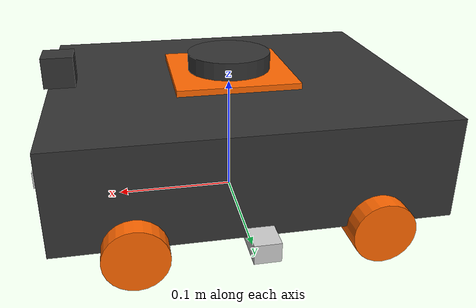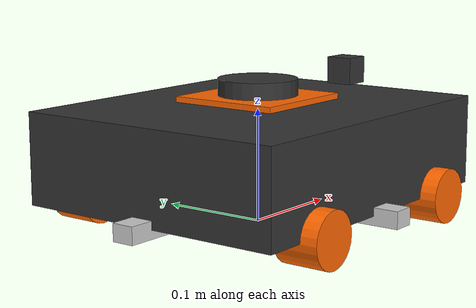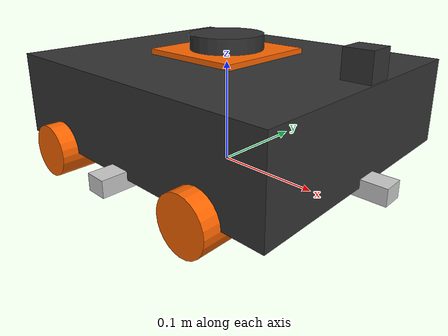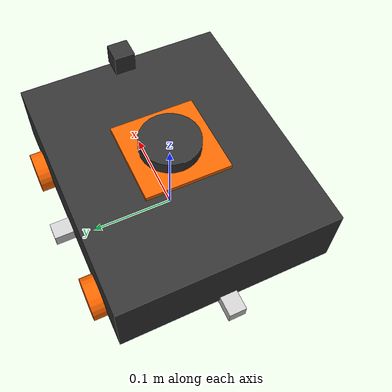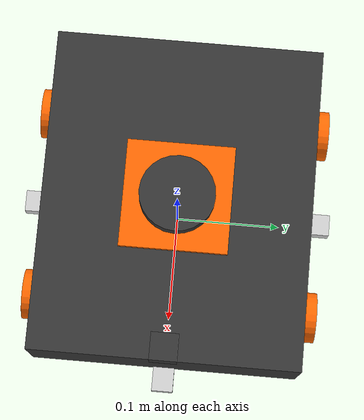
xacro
<?xml version="1.0"?>
<!-- SPDX-License-Identifier: Apache-2.0 -->
<robot xmlns:xacro="http://www.ros.org/wiki/xacro" name="robot_platform">

  <!-- SKU-configurable parameters (defaults = Basic/Standard/Pro) -->
  <xacro:arg name="chassis_length" default="0.300"/>
  <xacro:arg name="chassis_width" default="0.250"/>
  <xacro:arg name="chassis_height" default="0.080"/>
  <xacro:arg name="chassis_mass" default="2.5"/>
  <xacro:arg name="wheel_radius" default="0.024"/>
  <xacro:arg name="wheel_width" default="0.040"/>
  <xacro:arg name="wheel_mass" default="0.15"/>
  <xacro:arg name="wheelbase" default="0.180"/>
  <xacro:arg name="track_width" default="0.200"/>

  <xacro:property name="chassis_length" value="$(arg chassis_length)"/>
  <xacro:property name="chassis_width" value="$(arg chassis_width)"/>
  <xacro:property name="chassis_height" value="$(arg chassis_height)"/>
  <xacro:property name="chassis_mass" value="$(arg chassis_mass)"/>
  <xacro:property name="wheel_radius" value="$(arg wheel_radius)"/>
  <xacro:property name="wheel_width" value="$(arg wheel_width)"/>
  <xacro:property name="wheel_mass" value="$(arg wheel_mass)"/>
  <xacro:property name="wheelbase" value="$(arg wheelbase)"/>
  <xacro:property name="track_width" value="$(arg track_width)"/>
  <xacro:property name="ground_clearance" value="${wheel_radius + 0.001}"/>

  <!-- Materials -->
  <material name="dark_grey">
    <color rgba="0.2 0.2 0.2 1.0"/>
  </material>
  <material name="orange">
    <color rgba="1.0 0.4 0.0 1.0"/>
  </material>
  <material name="light_grey">
    <color rgba="0.8 0.8 0.8 1.0"/>
  </material>

  <!-- Inertia macros -->
  <xacro:macro name="box_inertia" params="m x y z">
    <inertial>
      <mass value="${m}"/>
      <inertia ixx="${m*(y*y+z*z)/12}" ixy="0" ixz="0"
               iyy="${m*(x*x+z*z)/12}" iyz="0"
               izz="${m*(x*x+y*y)/12}"/>
    </inertial>
  </xacro:macro>

  <xacro:macro name="cylinder_inertia" params="m r h">
    <inertial>
      <mass value="${m}"/>
      <inertia ixx="${m*(3*r*r+h*h)/12}" ixy="0" ixz="0"
               iyy="${m*(3*r*r+h*h)/12}" iyz="0"
               izz="${m*r*r/2}"/>
    </inertial>
  </xacro:macro>

  <!-- Wheel macro -->
  <xacro:macro name="mecanum_wheel" params="name x_offset y_offset">
    <link name="${name}_wheel_link">
      <visual>
        <geometry>
          <cylinder radius="${wheel_radius}" length="${wheel_width}"/>
        </geometry>
        <origin xyz="0 0 0" rpy="${pi/2} 0 0"/>
        <material name="orange"/>
      </visual>
      <collision>
        <geometry>
          <cylinder radius="${wheel_radius}" length="${wheel_width}"/>
        </geometry>
        <origin xyz="0 0 0" rpy="${pi/2} 0 0"/>
      </collision>
      <xacro:cylinder_inertia m="${wheel_mass}" r="${wheel_radius}" h="${wheel_width}"/>
    </link>

    <joint name="${name}_wheel_joint" type="continuous">
      <parent link="base_link"/>
      <child link="${name}_wheel_link"/>
      <origin xyz="${x_offset} ${y_offset} 0" rpy="0 0 0"/>
      <axis xyz="0 1 0"/>
    </joint>
  </xacro:macro>

  <!-- Ultrasonic sensor macro -->
  <xacro:macro name="ultrasonic_sensor" params="name x y yaw">
    <link name="${name}_link">
      <visual>
        <geometry>
          <box size="0.045 0.020 0.015"/>
        </geometry>
        <material name="light_grey"/>
      </visual>
      <collision>
        <geometry>
          <box size="0.045 0.020 0.015"/>
        </geometry>
      </collision>
      <inertial>
        <mass value="0.01"/>
        <inertia ixx="0.000001" ixy="0" ixz="0" iyy="0.000001" iyz="0" izz="0.000001"/>
      </inertial>
    </link>

    <joint name="${name}_joint" type="fixed">
      <parent link="base_link"/>
      <child link="${name}_link"/>
      <origin xyz="${x} ${y} 0.0" rpy="0 0 ${yaw}"/>
    </joint>
  </xacro:macro>

  <!-- Base footprint (ground plane reference) -->
  <link name="base_footprint"/>

  <!-- Base link (chassis) -->
  <link name="base_link">
    <visual>
      <geometry>
        <box size="${chassis_length} ${chassis_width} ${chassis_height}"/>
      </geometry>
      <origin xyz="0 0 ${chassis_height/2}" rpy="0 0 0"/>
      <material name="dark_grey"/>
    </visual>
    <collision>
      <geometry>
        <box size="${chassis_length} ${chassis_width} ${chassis_height}"/>
      </geometry>
      <origin xyz="0 0 ${chassis_height/2}" rpy="0 0 0"/>
    </collision>
    <xacro:box_inertia m="${chassis_mass}" x="${chassis_length}" y="${chassis_width}" z="${chassis_height}"/>
  </link>

  <joint name="base_footprint_joint" type="fixed">
    <parent link="base_footprint"/>
    <child link="base_link"/>
    <origin xyz="0 0 ${ground_clearance}" rpy="0 0 0"/>
  </joint>

  <!-- Wheels -->
  <xacro:mecanum_wheel name="front_left"  x_offset="${wheelbase/2}"  y_offset="${track_width/2 + wheel_width/2}"/>
  <xacro:mecanum_wheel name="front_right" x_offset="${wheelbase/2}"  y_offset="${-(track_width/2 + wheel_width/2)}"/>
  <xacro:mecanum_wheel name="rear_left"   x_offset="${-wheelbase/2}" y_offset="${track_width/2 + wheel_width/2}"/>
  <xacro:mecanum_wheel name="rear_right"  x_offset="${-wheelbase/2}" y_offset="${-(track_width/2 + wheel_width/2)}"/>

  <!-- IMU -->
  <link name="imu_link">
    <visual>
      <geometry>
        <box size="0.020 0.020 0.003"/>
      </geometry>
      <material name="light_grey"/>
    </visual>
    <inertial>
      <mass value="0.005"/>
      <inertia ixx="0.0000001" ixy="0" ixz="0" iyy="0.0000001" iyz="0" izz="0.0000001"/>
    </inertial>
  </link>

  <joint name="imu_joint" type="fixed">
    <parent link="base_link"/>
    <child link="imu_link"/>
    <origin xyz="0 0 ${chassis_height}" rpy="0 0 0"/>
  </joint>

  <!-- Ultrasonic sensors -->
  <xacro:ultrasonic_sensor name="ultrasonic_front" x="${chassis_length/2}" y="0" yaw="0"/>
  <xacro:ultrasonic_sensor name="ultrasonic_back"  x="${-chassis_length/2}" y="0" yaw="${pi}"/>
  <xacro:ultrasonic_sensor name="ultrasonic_left"  x="0" y="${chassis_width/2}" yaw="${pi/2}"/>
  <xacro:ultrasonic_sensor name="ultrasonic_right" x="0" y="${-chassis_width/2}" yaw="${-pi/2}"/>

  <!-- Payload mount point -->
  <link name="payload_mount_link">
    <visual>
      <geometry>
        <box size="0.100 0.100 0.005"/>
      </geometry>
      <origin xyz="0 0 0" rpy="0 0 0"/>
      <material name="orange"/>
    </visual>
    <inertial>
      <mass value="0.05"/>
      <inertia ixx="0.000004" ixy="0" ixz="0" iyy="0.000004" iyz="0" izz="0.000008"/>
    </inertial>
  </link>

  <joint name="payload_mount_joint" type="fixed">
    <parent link="base_link"/>
    <child link="payload_mount_link"/>
    <origin xyz="0 0 ${chassis_height + 0.005}" rpy="0 0 0"/>
  </joint>

  <!-- Camera (fisheye 1080p, mounted on front upper chassis) -->
  <link name="camera_link">
    <visual>
      <geometry>
        <box size="0.025 0.025 0.025"/>
      </geometry>
      <material name="dark_grey"/>
    </visual>
    <collision>
      <geometry>
        <box size="0.025 0.025 0.025"/>
      </geometry>
    </collision>
    <inertial>
      <mass value="0.02"/>
      <inertia ixx="0.000001" ixy="0" ixz="0" iyy="0.000001" iyz="0" izz="0.000001"/>
    </inertial>
  </link>

  <joint name="camera_joint" type="fixed">
    <parent link="base_link"/>
    <child link="camera_link"/>
    <origin xyz="${chassis_length/2 - 0.01} 0 ${chassis_height + 0.015}" rpy="0 0 0"/>
  </joint>

  <!-- 2D LiDAR (LD06, mounted on top center) -->
  <link name="lidar_link">
    <visual>
      <geometry>
        <cylinder radius="0.035" length="0.020"/>
      </geometry>
      <material name="dark_grey"/>
    </visual>
    <collision>
      <geometry>
        <cylinder radius="0.035" length="0.020"/>
      </geometry>
    </collision>
    <inertial>
      <mass value="0.05"/>
      <inertia ixx="0.000002" ixy="0" ixz="0" iyy="0.000002" iyz="0" izz="0.000003"/>
    </inertial>
  </link>

  <joint name="lidar_joint" type="fixed">
    <parent link="base_link"/>
    <child link="lidar_link"/>
    <origin xyz="0 0 ${chassis_height + 0.012}" rpy="0 0 0"/>
  </joint>

</robot>
